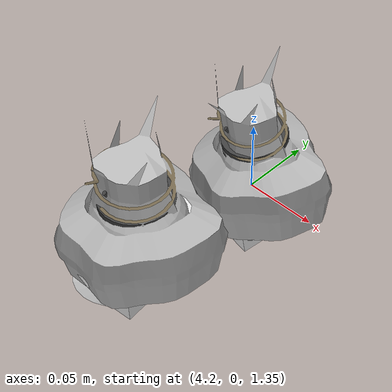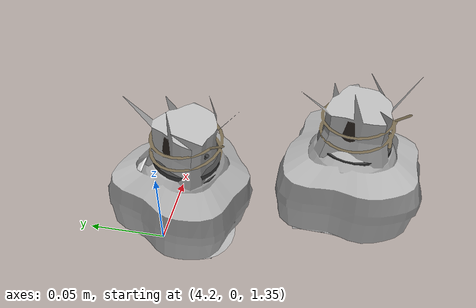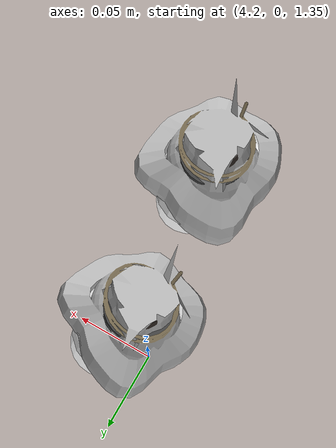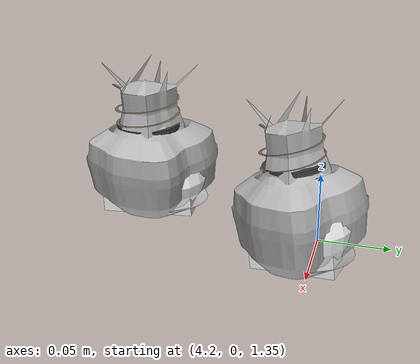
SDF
<sdf version="1.11">
 <world name="peach_orchard">
  <model name="ground">
   <static>true</static>
   <link name="link">
    <visual name="soil">
     <geometry><plane><normal>0 0 1</normal><size>32 22</size></plane></geometry>
     <material>
      <ambient>1 1 1 1</ambient>
      <diffuse>1 1 1 1</diffuse>
      <specular>0.1 0.1 0.1 1</specular>
      <pbr>
       <metal>
        <albedo_map>textures/soil_albedo.png</albedo_map>
        <normal_map type="tangent">textures/soil_normal.png</normal_map>
        <roughness>0.95</roughness>
        <metalness>0</metalness>
       </metal>
      </pbr>
     </material>
    </visual>
    <collision name="c_soil">
     <geometry><plane><normal>0 0 1</normal><size>32 22</size></plane></geometry>
    </collision>
   </link>
  </model>
  <model name="peach_tree_r3_t3_01">
   <pose>4.22 -0.00759738 1.34249 0 0.144991 -2.12672</pose>
   <static>true</static>
   <link name="bag">
    <visual name="bag_mesh">
     <pose>0 0 0.0471475 0 0 -0</pose>
     <geometry>
      <mesh><uri>model://peach_sim/meshes/bagged_peach.glb</uri><scale>1.02004 1.20355 1.07153</scale></mesh>
     </geometry>
    </visual>
    <visual name="body">
     <pose>0 0 0.0291475 0 0 0</pose>
     <geometry><ellipsoid><radii>0.0382515 0.0312924 0.0314793</radii></ellipsoid></geometry>
     <material>
      <ambient>1 1 1 1</ambient>
      <diffuse>1 1 1 1</diffuse>
      <specular>0.1 0.1 0.1 1</specular>
      <pbr>
       <metal>
        <albedo_map>textures/paper_bag_albedo.png</albedo_map>
        <normal_map type="tangent">textures/paper_bag_normal.png</normal_map>
        <roughness>0.72</roughness>
        <metalness>0</metalness>
       </metal>
      </pbr>
     </material>
    </visual>
    <visual name="bottom_fold">
     <pose>0 0 0.012 0 0 0.35</pose>
     <geometry><box><size>0.0592898 0.0359862 0.022</size></box></geometry>
     <material>
      <ambient>1 1 1 1</ambient>
      <diffuse>1 1 1 1</diffuse>
      <specular>0.1 0.1 0.1 1</specular>
      <pbr>
       <metal>
        <albedo_map>textures/paper_bag_albedo.png</albedo_map>
        <normal_map type="tangent">textures/paper_bag_normal.png</normal_map>
        <roughness>0.8</roughness>
        <metalness>0</metalness>
       </metal>
      </pbr>
     </material>
    </visual>
    <visual name="fruit">
     <pose>0 0 0.018575 0 0 0</pose>
     <geometry><sphere><radius>0.025558</radius></sphere></geometry>
     <material>
      <ambient>1 1 1 1</ambient>
      <diffuse>1 1 1 1</diffuse>
      <specular>0.1 0.1 0.1 1</specular>
      <pbr>
       <metal>
        <albedo_map>textures/fruit_skin_albedo.png</albedo_map>
        <normal_map type="tangent">textures/fruit_skin_normal.png</normal_map>
        <roughness>0.55</roughness>
        <metalness>0</metalness>
       </metal>
      </pbr>
     </material>
    </visual>
    <visual name="neck">
     <pose>0 0 0.0672949 0 0 0</pose>
     <geometry><cylinder><radius>0.013</radius><length>0.018</length></cylinder></geometry>
     <material>
      <ambient>1 1 1 1</ambient>
      <diffuse>1 1 1 1</diffuse>
      <specular>0.1 0.1 0.1 1</specular>
      <pbr>
       <metal>
        <albedo_map>textures/paper_bag_albedo.png</albedo_map>
        <normal_map type="tangent">textures/paper_bag_normal.png</normal_map>
        <roughness>0.75</roughness>
        <metalness>0</metalness>
       </metal>
      </pbr>
     </material>
    </visual>
    <visual name="gather">
     <pose>0 0 0.0482949 0 0 0</pose>
     <geometry><cylinder><radius>0.019</radius><length>0.02</length></cylinder></geometry>
     <material>
      <ambient>1 1 1 1</ambient>
      <diffuse>1 1 1 1</diffuse>
      <specular>0.1 0.1 0.1 1</specular>
      <pbr>
       <metal>
        <albedo_map>textures/paper_bag_albedo.png</albedo_map>
        <normal_map type="tangent">textures/paper_bag_normal.png</normal_map>
        <roughness>0.8</roughness>
        <metalness>0</metalness>
       </metal>
      </pbr>
     </material>
    </visual>
    <visual name="inner_paper">
     <pose>0 0 0.0722949 0 0 0</pose>
     <geometry><cylinder><radius>0.01</radius><length>0.008</length></cylinder></geometry>
     <material>
      <ambient>0.180392 0.14902 0.133333 1</ambient>
      <diffuse>0.180392 0.14902 0.133333 1</diffuse>
      <specular>0.1 0.1 0.1 1</specular>
     </material>
    </visual>
    <visual name="wire_0">
     <pose>0 0 0.0622949 0 0 0</pose>
     <geometry><cylinder><radius>0.0205</radius><length>0.0035</length></cylinder></geometry>
     <material>
      <ambient>0.25 0.25 0.25 1</ambient>
      <diffuse>0.25 0.25 0.25 1</diffuse>
      <specular>0.1 0.1 0.1 1</specular>
     </material>
    </visual>
    <visual name="wire_1">
     <pose>0 0 0.0692949 0 0 0</pose>
     <geometry><cylinder><radius>0.0205</radius><length>0.0035</length></cylinder></geometry>
     <material>
      <ambient>0.25 0.25 0.25 1</ambient>
      <diffuse>0.25 0.25 0.25 1</diffuse>
      <specular>0.1 0.1 0.1 1</specular>
     </material>
    </visual>
    <visual name="wire_tail">
     <pose>0.01 0 0.0702949 0 0.521618 0</pose>
     <geometry><cylinder><radius>0.0012</radius><length>0.026</length></cylinder></geometry>
     <material>
      <ambient>0.25 0.25 0.25 1</ambient>
      <diffuse>0.25 0.25 0.25 1</diffuse>
      <specular>0.1 0.1 0.1 1</specular>
     </material>
    </visual>
    <collision name="c_body">
     <pose>0 0 0.0291475 0 0 0</pose>
     <geometry><cylinder><radius>0.0382515</radius><length>0.0582949</length></cylinder></geometry>
    </collision>
   </link>
  </model>
  <model name="peach_tree_r3_t3_02">
   <pose>4.22 -0.111586 1.37402 0 0.0121172 -1.81899</pose>
   <static>true</static>
   <link name="bag">
    <visual name="bag_mesh">
     <pose>0 0 0.041181 0 0 -0</pose>
     <geometry>
      <mesh><uri>model://peach_sim/meshes/bagged_peach.glb</uri><scale>1.03049 1.14054 0.935932</scale></mesh>
     </geometry>
    </visual>
    <visual name="body">
     <pose>0 0 0.023181 0 0 0</pose>
     <geometry><ellipsoid><radii>0.0386433 0.0296542 0.0250355</radii></ellipsoid></geometry>
     <material>
      <ambient>1 1 1 1</ambient>
      <diffuse>1 1 1 1</diffuse>
      <specular>0.1 0.1 0.1 1</specular>
      <pbr>
       <metal>
        <albedo_map>textures/paper_bag_albedo.png</albedo_map>
        <normal_map type="tangent">textures/paper_bag_normal.png</normal_map>
        <roughness>0.72</roughness>
        <metalness>0</metalness>
       </metal>
      </pbr>
     </material>
    </visual>
    <visual name="bottom_fold">
     <pose>0 0 0.012 0 0 0.35</pose>
     <geometry><box><size>0.0598971 0.0341023 0.022</size></box></geometry>
     <material>
      <ambient>1 1 1 1</ambient>
      <diffuse>1 1 1 1</diffuse>
      <specular>0.1 0.1 0.1 1</specular>
      <pbr>
       <metal>
        <albedo_map>textures/paper_bag_albedo.png</albedo_map>
        <normal_map type="tangent">textures/paper_bag_normal.png</normal_map>
        <roughness>0.8</roughness>
        <metalness>0</metalness>
       </metal>
      </pbr>
     </material>
    </visual>
    <visual name="fruit">
     <pose>0 0 0.0210929 0 0 0</pose>
     <geometry><sphere><radius>0.0281766</radius></sphere></geometry>
     <material>
      <ambient>1 1 1 1</ambient>
      <diffuse>1 1 1 1</diffuse>
      <specular>0.1 0.1 0.1 1</specular>
      <pbr>
       <metal>
        <albedo_map>textures/fruit_skin_albedo.png</albedo_map>
        <normal_map type="tangent">textures/fruit_skin_normal.png</normal_map>
        <roughness>0.55</roughness>
        <metalness>0</metalness>
       </metal>
      </pbr>
     </material>
    </visual>
    <visual name="neck">
     <pose>0 0 0.055362 0 0 0</pose>
     <geometry><cylinder><radius>0.013</radius><length>0.018</length></cylinder></geometry>
     <material>
      <ambient>1 1 1 1</ambient>
      <diffuse>1 1 1 1</diffuse>
      <specular>0.1 0.1 0.1 1</specular>
      <pbr>
       <metal>
        <albedo_map>textures/paper_bag_albedo.png</albedo_map>
        <normal_map type="tangent">textures/paper_bag_normal.png</normal_map>
        <roughness>0.75</roughness>
        <metalness>0</metalness>
       </metal>
      </pbr>
     </material>
    </visual>
    <visual name="gather">
     <pose>0 0 0.036362 0 0 0</pose>
     <geometry><cylinder><radius>0.019</radius><length>0.02</length></cylinder></geometry>
     <material>
      <ambient>1 1 1 1</ambient>
      <diffuse>1 1 1 1</diffuse>
      <specular>0.1 0.1 0.1 1</specular>
      <pbr>
       <metal>
        <albedo_map>textures/paper_bag_albedo.png</albedo_map>
        <normal_map type="tangent">textures/paper_bag_normal.png</normal_map>
        <roughness>0.8</roughness>
        <metalness>0</metalness>
       </metal>
      </pbr>
     </material>
    </visual>
    <visual name="inner_paper">
     <pose>0 0 0.060362 0 0 0</pose>
     <geometry><cylinder><radius>0.01</radius><length>0.008</length></cylinder></geometry>
     <material>
      <ambient>0.180392 0.14902 0.133333 1</ambient>
      <diffuse>0.180392 0.14902 0.133333 1</diffuse>
      <specular>0.1 0.1 0.1 1</specular>
     </material>
    </visual>
    <visual name="wire_0">
     <pose>0 0 0.050362 0 0 0</pose>
     <geometry><cylinder><radius>0.0205</radius><length>0.0035</length></cylinder></geometry>
     <material>
      <ambient>0.25 0.25 0.25 1</ambient>
      <diffuse>0.25 0.25 0.25 1</diffuse>
      <specular>0.1 0.1 0.1 1</specular>
     </material>
    </visual>
    <visual name="wire_1">
     <pose>0 0 0.057362 0 0 0</pose>
     <geometry><cylinder><radius>0.0205</radius><length>0.0035</length></cylinder></geometry>
     <material>
      <ambient>0.25 0.25 0.25 1</ambient>
      <diffuse>0.25 0.25 0.25 1</diffuse>
      <specular>0.1 0.1 0.1 1</specular>
     </material>
    </visual>
    <visual name="wire_tail">
     <pose>0.01 0 0.058362 0 0.521618 0</pose>
     <geometry><cylinder><radius>0.0012</radius><length>0.026</length></cylinder></geometry>
     <material>
      <ambient>0.25 0.25 0.25 1</ambient>
      <diffuse>0.25 0.25 0.25 1</diffuse>
      <specular>0.1 0.1 0.1 1</specular>
     </material>
    </visual>
    <collision name="c_body">
     <pose>0 0 0.023181 0 0 0</pose>
     <geometry><cylinder><radius>0.0386433</radius><length>0.046362</length></cylinder></geometry>
    </collision>
   </link>
  </model>
 </world>
</sdf>
